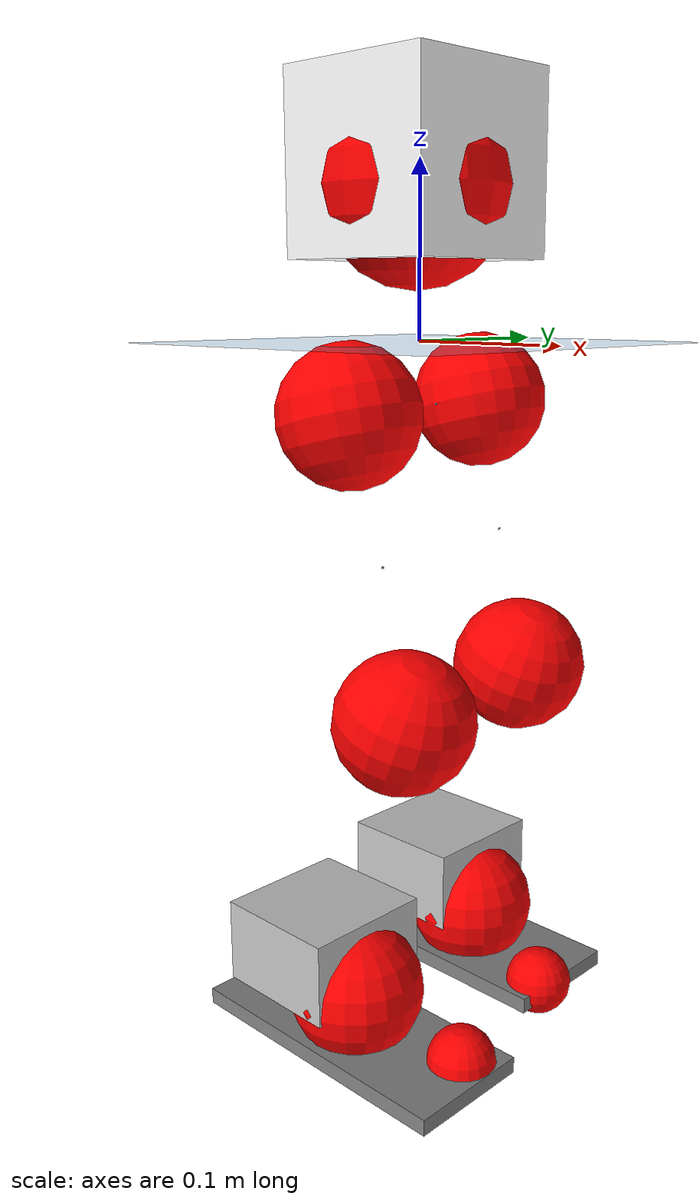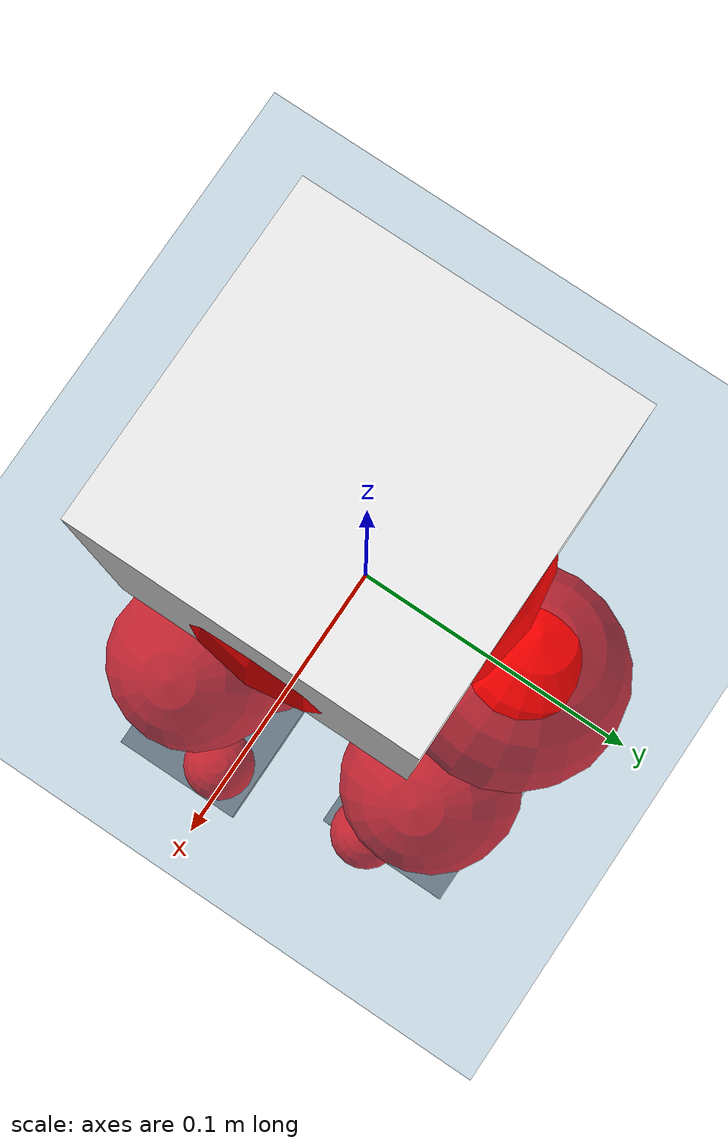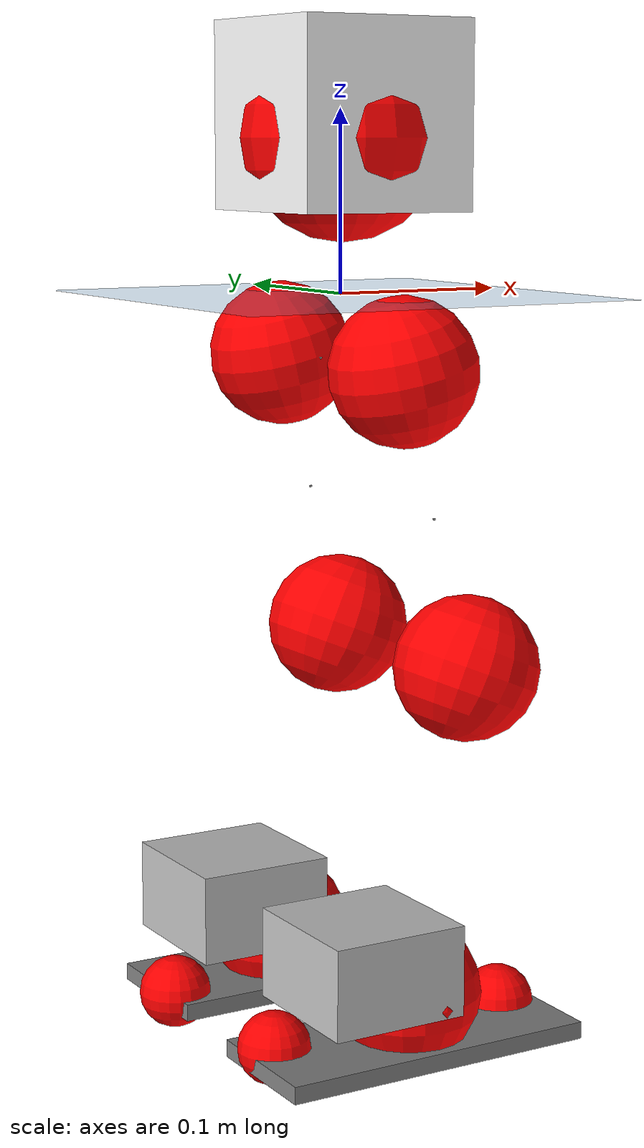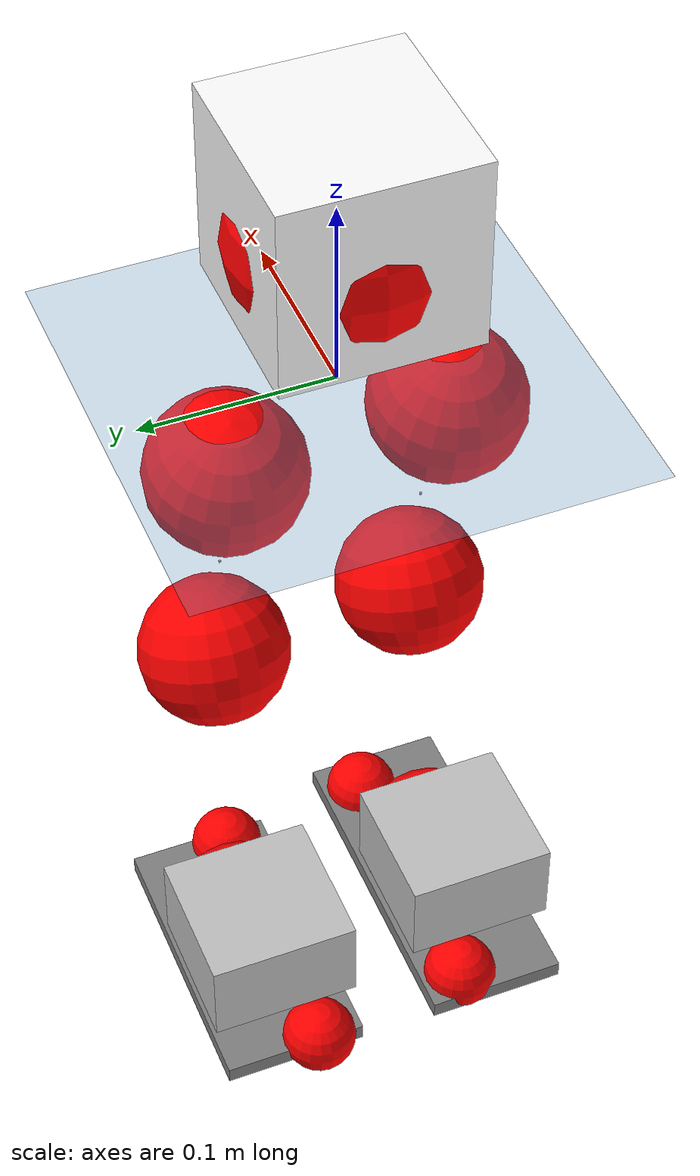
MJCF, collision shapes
<mujoco model="pi_12dof_release_v1">
  <compiler angle="radian" assetdir="assets" balanceinertia="true" inertiafromgeom="false"/>

  <option timestep="0.005" density="1.2" viscosity="2e-05"/>

  <size nkey="1"/>

  <visual>
    <quality shadowsize="8192"/>
    <map shadowclip="0.5"/>
  </visual>

  <default>
    <default class="/">
      <joint armature="0.01" damping="0.01" frictionloss="0.01"/>
      <geom contype="0" conaffinity="0" group="1" solref="-1000 -80"/>
      <site size="0.01 0.005 0.005" group="5"/>
      <general forcelimited="true" biastype="affine" gainprm="20" biasprm="0 -20 -0.5"/>
      <default class="foot">
        <geom size="0.0845 0.036 0.005" type="box" condim="6" group="4" priority="1" friction="0.9 0.2 0.2" solimp="0.015 1 0.005"/>
      </default>
      <default class="reward_collision_sphere">
        <geom group="5" rgba="1 0 0 1"/>
      </default>
    </default>
  </default>

  <asset>
    <texture type="skybox" colorspace="auto" name="//unnamed_texture_0" builtin="gradient" rgb1="0.95 0.95 0.95" rgb2="0.95 0.95 0.95" width="100" height="600"/>
    <texture type="2d" colorspace="auto" name="texplane" builtin="checker" rgb1="0.345 0.575 0.748" rgb2="0.345 0.575 0.748" markrgb="1 1 1" width="512" height="512"/>
    <material name="MatPlane" class="/" texture="texplane" texuniform="true" texrepeat="2 2" specular="0.9"/>
    <mesh name="baselink_1" class="/" file="baselink_1.STL"/>
    <mesh name="r_hip_pitch_link" class="/" file="r_hip_pitch_link.STL"/>
    <mesh name="r_hip_roll_link" class="/" file="r_hip_roll_link.STL"/>
    <mesh name="r_thigh_link" class="/" file="r_thigh_link.STL"/>
    <mesh name="r_calf_link" class="/" file="r_calf_link.STL"/>
    <mesh name="r_ankle_pitch_link" class="/" file="r_ankle_pitch_link.STL"/>
    <mesh name="r_ankle_roll_link" class="/" file="r_ankle_roll_link.STL"/>
    <mesh name="l_hip_pitch_link" class="/" file="l_hip_pitch_link.STL"/>
    <mesh name="l_hip_roll_link" class="/" file="l_hip_roll_link.STL"/>
    <mesh name="l_thigh_link" class="/" file="l_thigh_link.STL"/>
    <mesh name="l_calf_link" class="/" file="l_calf_link.STL"/>
    <mesh name="l_ankle_pitch_link" class="/" file="l_ankle_pitch_link.STL"/>
    <mesh name="l_ankle_roll_link" class="/" file="l_ankle_roll_link.STL"/>
  </asset>

  <worldbody>
    <geom name="floor" class="/" size="100 100 0.125" type="plane" group="0" material="MatPlane"/>
    <light name="toplight_shadow" class="/" pos="0 0 5" dir="0.0990148 0.0990148 -0.990148" type="directional" ambient="0.04 0.04 0.04" diffuse="0.55 0.55 0.55" specular="0.12 0.12 0.12"/>
    <light name="toplight_fill" class="/" pos="0 0 5" dir="0.0990148 0.0990148 -0.990148" type="directional" castshadow="false" ambient="0.04 0.04 0.04" diffuse="0.3 0.3 0.3" specular="0.08 0.08 0.08"/>
    <body name="trunk" pos="-0.000550762 -0.00249432 1.98479e-05" quat="0.999999 0.000781356 0.000982355 -4.60478e-05">
      <inertial pos="0.000645754 -0.00267831 0.051253" quat="0.699398 0.0173498 0.00851066 0.714472" mass="2.29447" diaginertia="0.0140353 0.00236301 0.0104397"/>
      <joint name="//unnamed_joint_0" type="free"/>
      <geom name="//unnamed_geom_1" class="/" type="mesh" density="0" rgba="1 1 1 1" mesh="baselink_1"/>
      <geom name="//unnamed_geom_2" class="/" size="0.0509967 0.0509967 0.0509967" pos="0 0 0.0961145" type="box" rgba="1 1 1 1"/>
      <geom name="//unnamed_geom_3" class="reward_collision_sphere" size="0.0560964" pos="0 0 0.0841002"/>
      <site name="imu" class="/" pos="0.00417207 -0.00106495 -0.00100899" size="0.0101993"/>
      <camera name="track" class="/" pos="0 -1.54056 0" quat="0.707107 0.707107 0 0" mode="trackcom"/>
      <camera name="ego_camera" class="/" pos="0.0816069 0 0.216258" quat="-0.5 -0.5 0.5 0.5"/>
      <body name="r_hip_pitch_link" pos="0.00141346 -0.0167023 -0.0396643" quat="0.99223 0.000297577 -0.124419 -0.000134521">
        <inertial pos="0.00100308 -0.0461087 -0.00105329" quat="-0.00980923 0.705577 -0.0303419 0.707916" mass="0.390378" diaginertia="0.000164464 2.58588e-05 0.000205671"/>
        <joint name="r_hip_pitch_joint" class="/" pos="0 0 0" axis="0.00692008 -0.999973 0.00263844" range="-1.70112 1.2873" armature="0.0104365" damping="0.0253893" frictionloss="0.01152"/>
        <geom name="//unnamed_geom_4" class="/" type="mesh" density="0" rgba="0.75294 0.75294 0.75294 1" mesh="r_hip_pitch_link"/>
        <geom name="//unnamed_geom_5" class="/" size="0.000509967 0.000509967 0.000509967" type="box" rgba="0.75294 0.75294 0.75294 1"/>
        <body name="r_hip_roll_link" pos="0.00318057 -0.0403289 0.000714367" quat="0.999999 0.000232735 -0.000286994 0.00107257">
          <inertial pos="-0.00315383 0.00110258 -0.0727846" quat="0.706583 -0.0766144 -0.0794188 0.698973" mass="0.423648" diaginertia="0.000494832 7.80923e-05 0.00032278"/>
          <joint name="r_hip_roll_joint" class="/" pos="0 0 0" axis="-0.999965 -0.00807243 0.00204198" range="-0.126127 0.48558" armature="0.011728" damping="0.0244781" frictionloss="0.0106113"/>
          <geom name="//unnamed_geom_6" class="/" type="mesh" density="0" rgba="0.75294 0.75294 0.75294 1" mesh="r_hip_roll_link"/>
          <geom name="//unnamed_geom_7" class="/" size="0.000509967 0.000509967 0.000509967" type="box" rgba="0.75294 0.75294 0.75294 1"/>
          <geom name="//unnamed_geom_8" class="reward_collision_sphere" size="0.0407974"/>
          <body name="r_thigh_link" pos="0.00122654 0.002931 -0.0840698" quat="1 -0.000438671 0.000622331 7.65337e-05">
            <inertial pos="-0.00221045 -0.00136767 -0.0599298" quat="0.737866 0.674945 0.00106402 0.00170812" mass="0.116503" diaginertia="0.000184984 2.57341e-05 0.00014222"/>
            <joint name="r_thigh_joint" class="/" pos="0 0 0" axis="0.0104781 0.00519506 -0.999932" range="-0.349595 0.546034" armature="0.01173" damping="0" frictionloss="0.0114584"/>
            <geom name="//unnamed_geom_9" class="/" type="mesh" density="0" rgba="0.75294 0.75294 0.75294 1" mesh="r_thigh_link"/>
            <geom name="//unnamed_geom_10" class="/" size="0.000509967 0.000509967 0.000509967" type="box" rgba="0.75294 0.75294 0.75294 1"/>
            <body name="r_calf_link" pos="-0.00162731 -0.00356444 -0.0863114" quat="0.947632 0.000350312 0.319364 1.99503e-05">
              <inertial pos="0.000889726 0.000196979 -0.0847417" quat="0.999899 -0.00429501 0.0133364 0.00229213" mass="0.86217" diaginertia="0.00522883 0.000949206 0.000441763"/>
              <joint name="r_calf_joint" class="/" pos="0 0 0" axis="0.000679578 -0.999935 -0.0113984" range="-1.68594 0.669539" armature="0.0104534" damping="0.00109835" frictionloss="0.0115599"/>
              <geom name="//unnamed_geom_11" class="/" type="mesh" density="0" rgba="0.75294 0.75294 0.75294 1" mesh="r_calf_link"/>
              <geom name="//unnamed_geom_12" class="/" size="0.000509967 0.000509967 0.000509967" type="box" rgba="0.75294 0.75294 0.75294 1"/>
              <geom name="//unnamed_geom_13" class="reward_collision_sphere" size="0.0407974"/>
              <body name="r_ankle_pitch_link" pos="-0.000578628 -0.00148317 -0.170463" quat="0.98007 3.4427e-06 -0.198651 1.78353e-05">
                <inertial pos="0.00674402 0.000486987 0.00229082" quat="0.000282813 0.707581 -0.0024498 0.706628" mass="0.186927" diaginertia="0.000456414 6.03653e-05 0.00030103"/>
                <joint name="r_ankle_pitch_joint" class="/" pos="0 0 0" axis="-0.00473431 -0.999989 0.000761234" stiffness="0.0016899" range="-1.34772 0.448906" armature="0.0114963" damping="0.00812539" frictionloss="0.0115947"/>
                <geom name="//unnamed_geom_14" class="/" type="mesh" density="0" rgba="0.75294 0.75294 0.75294 1" mesh="r_ankle_pitch_link"/>
                <geom name="//unnamed_geom_15" class="/" size="0.0397774 0.0407974 0.0254983" type="box" rgba="0.75294 0.75294 0.75294 1"/>
                <body name="r_ankle_roll_link" pos="0.0836224 -0.000555284 0.00259261" quat="1 -0.000202619 0.000252117 -0.000189145">
                  <inertial pos="-0.028338 0.00259188 -0.0179814" quat="0.563932 0.429227 0.432257 0.557583" mass="0.56659" diaginertia="0.00175868 0.000296929 0.000708794"/>
                  <joint name="r_ankle_roll_joint" class="/" pos="0 0 0" axis="-0.999964 -0.00742356 0.00410366" stiffness="0.0101195" range="-0.106952 0.207664" armature="0.0105633" damping="0.021516" frictionloss="0.0102135"/>
                  <geom name="//unnamed_geom_16" class="/" type="mesh" density="0" rgba="0.75294 0.75294 0.75294 1" mesh="r_ankle_roll_link"/>
                  <geom name="//unnamed_geom_17" class="/" type="mesh" rgba="0.75294 0.75294 0.75294 1" mesh="r_ankle_roll_link"/>
                  <geom name="right_foot" class="foot" size="0.0923179 0.0384021 0.0049186" pos="-0.0554927 0 -0.052863"/>
                  <geom name="//unnamed_geom_19" class="reward_collision_sphere" size="0.0407974" pos="-0.0544046 0 -0.0240286"/>
                  <geom name="//unnamed_geom_20" class="reward_collision_sphere" size="0.0203987" pos="0.0163214 0.0154056 -0.0480573"/>
                  <geom name="//unnamed_geom_21" class="reward_collision_sphere" size="0.0203987" pos="-0.130571 0.0154056 -0.0480573"/>
                  <site name="right_foot" class="foot" pos="-0.0554927 0 -0.052863" size="0.0101993"/>
                </body>
              </body>
            </body>
          </body>
        </body>
      </body>
      <body name="l_hip_pitch_link" pos="-0.00193111 0.0197239 -0.0365555" quat="0.992197 1.09382e-05 -0.124683 -8.48868e-06">
        <inertial pos="-0.000104964 0.042106 0.00222119" quat="-0.0381119 0.703584 0.0276065 0.709052" mass="0.398809" diaginertia="0.000196284 2.76866e-05 0.000256137"/>
        <joint name="l_hip_pitch_joint" class="/" pos="0 0 0" axis="0.000174758 1 0.000321604" stiffness="0.0105743" range="-1.27307 1.80905" armature="0.0101291" damping="0.00968079" frictionloss="0.00998824"/>
        <geom name="//unnamed_geom_22" class="/" type="mesh" density="0" rgba="0.75294 0.75294 0.75294 1" mesh="l_hip_pitch_link"/>
        <geom name="//unnamed_geom_23" class="/" size="0.000509967 0.000509967 0.000509967" type="box" rgba="0.75294 0.75294 0.75294 1"/>
        <body name="l_hip_roll_link" pos="-0.00221995 0.0414694 0.000546023" quat="0.999999 -0.00113949 0.000445839 0.000235867">
          <inertial pos="-0.00377211 0.00197318 -0.0730872" quat="0.703066 -0.0816262 -0.0669198 0.703248" mass="0.399483" diaginertia="0.000495536 7.70872e-05 0.000332316"/>
          <joint name="l_hip_roll_joint" class="/" pos="0 0 0" axis="-0.999941 0.00515737 0.00953227" range="-0.508846 0.120724" armature="0.0113123" damping="0.00791945" frictionloss="0.00919812"/>
          <geom name="//unnamed_geom_24" class="/" type="mesh" density="0" rgba="0.75294 0.75294 0.75294 1" mesh="l_hip_roll_link"/>
          <geom name="//unnamed_geom_25" class="/" size="0.000509967 0.000509967 0.000509967" type="box" rgba="0.75294 0.75294 0.75294 1"/>
          <geom name="//unnamed_geom_26" class="reward_collision_sphere" size="0.0407974"/>
          <body name="l_thigh_link" pos="-0.00117492 -0.0010003 -0.0805903" quat="1 0.000820145 0.000388425 0.000197024">
            <inertial pos="0.000961188 0.00144034 -0.0553742" quat="0.674718 0.738073 -0.00154808 0.000435412" mass="0.11809" diaginertia="0.000181844 2.44753e-05 0.000138092"/>
            <joint name="l_thigh_joint" class="/" pos="0 0 0" axis="8.84017e-06 2.80708e-05 -1" stiffness="0.00668024" range="-0.598552 0.290498" armature="0.00912176" damping="0" frictionloss="0.0102768"/>
            <geom name="//unnamed_geom_27" class="/" type="mesh" density="0" rgba="0.75294 0.75294 0.75294 1" mesh="l_thigh_link"/>
            <geom name="//unnamed_geom_28" class="/" size="0.000509967 0.000509967 0.000509967" type="box" rgba="0.75294 0.75294 0.75294 1"/>
            <body name="l_calf_link" pos="-0.00289321 -0.000590204 -0.0846743" quat="0.947824 0.000811473 0.318793 -0.000144965">
              <inertial pos="-0.000418449 0.00204183 -0.0831867" quat="0.999983 0.00138234 -0.00156716 0.00552776" mass="0.846392" diaginertia="0.00526768 0.000929382 0.000438499"/>
              <joint name="l_calf_joint" class="/" pos="0 0 0" axis="0.000129313 0.999961 0.0087796" range="-0.59431 1.64781" armature="0.00956074" damping="0.0112204" frictionloss="0.0100598"/>
              <geom name="//unnamed_geom_29" class="/" type="mesh" density="0" rgba="0.75294 0.75294 0.75294 1" mesh="l_calf_link"/>
              <geom name="//unnamed_geom_30" class="/" size="0.000509967 0.000509967 0.000509967" type="box" rgba="0.75294 0.75294 0.75294 1"/>
              <geom name="//unnamed_geom_31" class="reward_collision_sphere" size="0.0407974"/>
              <body name="l_ankle_pitch_link" pos="-0.0024739 0.00358197 -0.16924" quat="0.980122 -0.000168038 -0.198397 8.60393e-05">
                <inertial pos="0.0055828 -0.00355827 0.00131988" quat="-0.0035593 0.709714 0.00585539 0.704457" mass="0.184692" diaginertia="0.000470277 5.97378e-05 0.000288074"/>
                <joint name="l_ankle_pitch_joint" class="/" pos="0 0 0" axis="0.00285872 0.999995 0.00160955" stiffness="0.00863437" range="-0.475885 1.29357" armature="0.00891021" damping="0.0231533" frictionloss="0.00903096"/>
                <geom name="//unnamed_geom_32" class="/" type="mesh" density="0" rgba="0.75294 0.75294 0.75294 1" mesh="l_ankle_pitch_link"/>
                <geom name="//unnamed_geom_33" class="/" size="0.0397774 0.0407974 0.0254983" type="box" rgba="0.75294 0.75294 0.75294 1"/>
                <body name="l_ankle_roll_link" pos="0.0835791 -0.00088685 0.000935688" quat="1 -1.79423e-05 0.000176137 -8.06016e-05">
                  <inertial pos="-0.0289737 -0.00102906 -0.0179608" quat="0.560324 0.430144 0.433771 0.559335" mass="0.565684" diaginertia="0.0017155 0.000284099 0.000713899"/>
                  <joint name="l_ankle_roll_joint" class="/" pos="0 0 0" axis="-1 0.000593219 -0.000138191" stiffness="0.000999964" range="-0.10614 0.160672" armature="0.0107332" damping="0" frictionloss="0.00993594"/>
                  <geom name="//unnamed_geom_34" class="/" type="mesh" density="0" rgba="0.75294 0.75294 0.75294 1" mesh="l_ankle_roll_link"/>
                  <geom name="//unnamed_geom_35" class="/" type="mesh" rgba="0.75294 0.75294 0.75294 1" mesh="l_ankle_roll_link"/>
                  <geom name="left_foot" class="foot" size="0.0796554 0.0394672 0.00488262" pos="-0.0554927 0 -0.052863"/>
                  <geom name="//unnamed_geom_37" class="reward_collision_sphere" size="0.0407974" pos="-0.0544046 0 -0.0240286"/>
                  <geom name="//unnamed_geom_38" class="reward_collision_sphere" size="0.0203987" pos="0.0163214 -0.0154056 -0.0480573"/>
                  <geom name="//unnamed_geom_39" class="reward_collision_sphere" size="0.0203987" pos="-0.130571 -0.0154056 -0.0480573"/>
                  <site name="left_foot" class="foot" pos="-0.0554927 0 -0.052863" size="0.0101993"/>
                </body>
              </body>
            </body>
          </body>
        </body>
      </body>
    </body>
  </worldbody>

  <contact>
    <pair class="/" geom1="floor" geom2="right_foot" name="//unnamed_contact_1"/>
    <pair class="/" geom1="floor" geom2="left_foot" name="//unnamed_contact_0"/>
  </contact>

  <actuator>
    <general name="r_hip_pitch_joint" class="/" joint="r_hip_pitch_joint" forcerange="-20.737 20.737" gainprm="19.7485" biasprm="0 -19.7485 -0.531209"/>
    <general name="r_hip_roll_joint" class="/" joint="r_hip_roll_joint" forcerange="-23.2297 23.2297" gainprm="19.7485" biasprm="0 -19.7485 -0.531209"/>
    <general name="r_thigh_joint" class="/" joint="r_thigh_joint" forcerange="-21.2539 21.2539" gainprm="19.7485" biasprm="0 -19.7485 -0.531209"/>
    <general name="r_calf_joint" class="/" joint="r_calf_joint" forcerange="-21.0916 21.0916" gainprm="19.7485" biasprm="0 -19.7485 -0.531209"/>
    <general name="r_ankle_pitch_joint" class="/" joint="r_ankle_pitch_joint" forcerange="-21.297 21.297" gainprm="19.7485" biasprm="0 -19.7485 -0.531209"/>
    <general name="r_ankle_roll_joint" class="/" joint="r_ankle_roll_joint" forcerange="-23.5889 23.5889" gainprm="19.7485" biasprm="0 -19.7485 -0.531209"/>
    <general name="l_hip_pitch_joint" class="/" joint="l_hip_pitch_joint" forcerange="-22.6162 22.6162" gainprm="19.7485" biasprm="0 -19.7485 -0.531209"/>
    <general name="l_hip_roll_joint" class="/" joint="l_hip_roll_joint" forcerange="-21.4811 21.4811" gainprm="19.7485" biasprm="0 -19.7485 -0.531209"/>
    <general name="l_thigh_joint" class="/" joint="l_thigh_joint" forcerange="-21.4767 21.4767" gainprm="19.7485" biasprm="0 -19.7485 -0.531209"/>
    <general name="l_calf_joint" class="/" joint="l_calf_joint" forcerange="-20.0875 20.0875" gainprm="19.7485" biasprm="0 -19.7485 -0.531209"/>
    <general name="l_ankle_pitch_joint" class="/" joint="l_ankle_pitch_joint" forcerange="-21.2357 21.2357" gainprm="19.7485" biasprm="0 -19.7485 -0.531209"/>
    <general name="l_ankle_roll_joint" class="/" joint="l_ankle_roll_joint" forcerange="-19.2223 19.2223" gainprm="19.7485" biasprm="0 -19.7485 -0.531209"/>
  </actuator>

  <sensor>
    <gyro site="imu" name="imu_angular_velocity"/>
    <velocimeter site="imu" name="imu_linear_velocity"/>
    <framelinvel objtype="site" objname="left_foot" name="left_foot_global_linear_velocity"/>
    <framelinvel objtype="site" objname="right_foot" name="right_foot_global_linear_velocity"/>
  </sensor>

  <keyframe>
    <key name="home" qpos="0 0 0.291 1 0 0 0 0.4 0 0 -0.8 0.4 0 -0.4 0 0 0.8 -0.4 0"/>
  </keyframe>
</mujoco>
